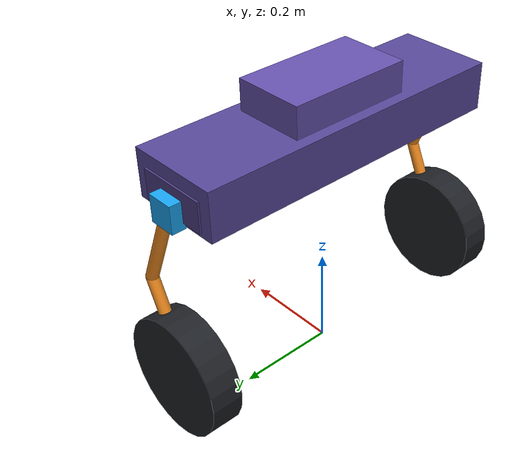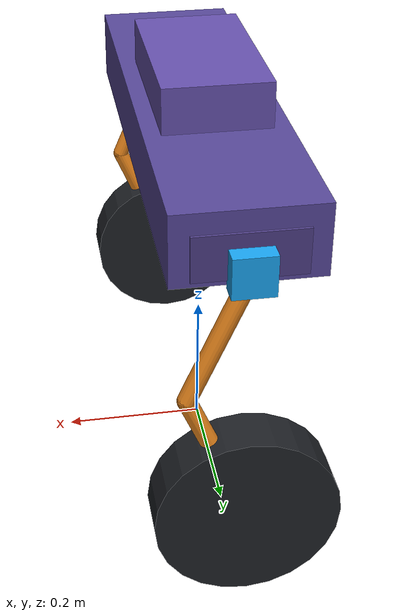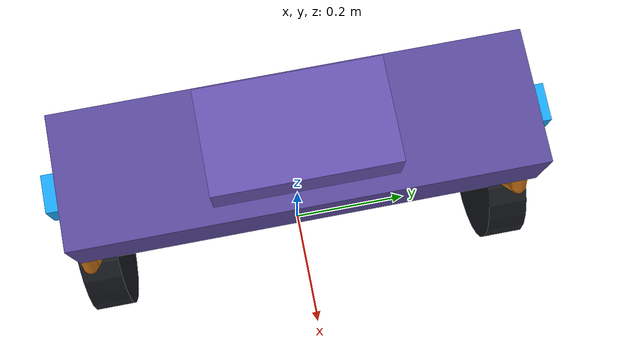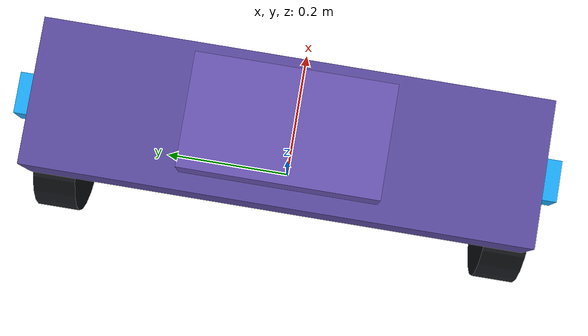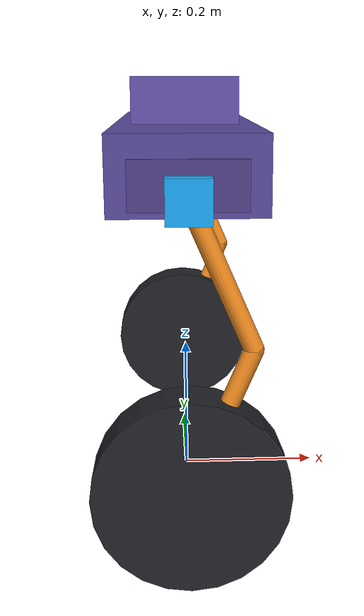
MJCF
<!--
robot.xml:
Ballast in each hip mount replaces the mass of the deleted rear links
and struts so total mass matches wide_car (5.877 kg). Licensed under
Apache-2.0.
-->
<!-- Perlin heightfield scene. Generated by scripts/generate_perlin.py. -->
<mujoco model="prototype_perlin">
  <include file="robot.xml"/>
  <visual>
    <headlight diffuse="0.18 0.18 0.18" ambient="0.10 0.10 0.10"/>
    <rgba haze="0.15 0.25 0.35 1"/>
    <quality shadowsize="2048"/>
    <global offwidth="960" offheight="540" azimuth="140" elevation="-28"/>
  </visual>
  <asset>
    <hfield name="unitree_perlin" file="../terrain/heightfield.png"
            size="24.000 2.000 0.200000 0.20"/>
    <texture type="skybox" builtin="gradient" rgb1="0.30 0.50 0.70"
             rgb2="0.00 0.00 0.00" width="512" height="3072"/>
    <texture name="grid" type="2d" builtin="checker" mark="edge"
             rgb1="0.20 0.30 0.40" rgb2="0.10 0.20 0.30"
             markrgb="0.80 0.80 0.80" width="512" height="512"/>
    <material name="grid" texture="grid" texrepeat="1 1" texuniform="true"
              reflectance="0.05"/>
    <material name="track" rgba="0.76 0.76 0.74 1" reflectance="0"
              specular="0.18" shininess="0.06"/>
  </asset>
  <worldbody>
    <light pos="2.0 1.5 4.0" dir="-0.25 0.15 -0.95" directional="true"
           diffuse="0.95 0.94 0.90" specular="0.18 0.16 0.14"
           castshadow="true"/>
    <geom name="terrain" type="hfield" hfield="unitree_perlin"
          pos="24.000 0 -0.100000" material="track" group="3"
          friction="1.1 0.02 0.002" condim="3"/>
  </worldbody>
</mujoco>

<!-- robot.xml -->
<mujoco model="prototype">
  <compiler angle="radian" autolimits="true"/>
  <option timestep="0.001" integrator="implicitfast" iterations="60"
          ls_iterations="20" noslip_iterations="4"/>

  <default>
    <joint armature="0.005" damping="0.15"/>
    <geom friction="0.8 0.01 0.001" solref="0.004 1"/>
    <default class="link">
      <geom type="capsule" size="0.012" contype="0" conaffinity="0"
            rgba="0.82 0.84 0.88 1"/>
    </default>
    <default class="wheel">
      <geom type="cylinder" size="0.120 0.032" friction="1.1 0.02 0.001"
            rgba="0.12 0.13 0.15 1"/>
    </default>
  </default>

  <worldbody>
    <body name="trunk" pos="0 0 0.408">
      <freejoint name="trunk_freejoint"/>
      <inertial pos="0.00014 0.00000 0.07200" mass="2.90"
                fullinertia="0.055 0.016 0.052 0 0 0"/>
      <geom name="trunk_collision" type="box" pos="0 0 0.086"
            size="0.095 0.328 0.048" rgba="0.34 0.28 0.60 1"/>
      <geom name="trunk_pod" type="box" pos="0 0 0.148"
            size="0.072 0.126 0.048" rgba="0.40 0.32 0.68 1"
            contype="0" conaffinity="0"/>
      <geom name="left_sponson" type="box" pos="0 0.278 0.076"
            size="0.070 0.054 0.030" rgba="0.30 0.24 0.52 1"
            contype="0" conaffinity="0"/>
      <geom name="right_sponson" type="box" pos="0 -0.278 0.076"
            size="0.070 0.054 0.030" rgba="0.30 0.24 0.52 1"
            contype="0" conaffinity="0"/>
      <geom name="axle_beam" type="capsule" fromto="0 0.336 0.050 0 -0.336 0.050"
            size="0.016" rgba="0.22 0.20 0.38 1"
            contype="0" conaffinity="0"/>
      <site name="imu" pos="-0.04095 0.04000 0.155" size="0.006"/>

      <!-- Left hip mount: rigid, no x–z slides. -->
      <body name="left_hip_mount" pos="0 0.3411 0.0602">
        <inertial pos="0 0 -0.16" mass="0.80"
                  diaginertia="0.0012 0.0012 0.0012"/>
        <geom type="box" size="0.027 0.014 0.027" density="0"
              contype="0" conaffinity="0" rgba="0.10 0.65 0.95 1"/>
        <site name="left_hip_origin" size="0.008" rgba="0.10 0.65 0.95 1"/>

        <body name="left_upper">
          <joint name="left_hip" type="hinge" axis="0 1 0" range="-0.65 0.65"/>
          <geom class="link" fromto="0 0 0 0.075 0 -0.174" mass="0.24"
                rgba="0.95 0.55 0.12 1"/>
          <site name="left_knee" pos="0.075 0 -0.174" size="0.009"
                rgba="0.95 0.55 0.12 1"/>

          <body name="left_lower" pos="0.075 0 -0.174">
            <joint name="left_knee" type="hinge" axis="0 1 0" range="-1.20 1.20"/>
            <geom class="link" fromto="0 0 0 -0.075 0 -0.174" mass="0.21"
                  rgba="0.95 0.55 0.12 1"/>
            <body name="left_wheel" pos="-0.075 0 -0.174">
              <joint name="left_wheel_joint" type="hinge" axis="0 1 0"
                     damping="0.005"/>
              <geom class="wheel" quat="0.7071068 0.7071068 0 0" mass="0.2385"/>
            </body>
          </body>
        </body>
      </body>

      <!-- Right hip mount: rigid, no x–z slides. -->
      <body name="right_hip_mount" pos="0 -0.3411 0.0602">
        <inertial pos="0 0 -0.16" mass="0.80"
                  diaginertia="0.0012 0.0012 0.0012"/>
        <geom type="box" size="0.027 0.014 0.027" density="0"
              contype="0" conaffinity="0" rgba="0.10 0.65 0.95 1"/>
        <site name="right_hip_origin" size="0.008" rgba="0.10 0.65 0.95 1"/>

        <body name="right_upper">
          <joint name="right_hip" type="hinge" axis="0 1 0" range="-0.65 0.65"/>
          <geom class="link" fromto="0 0 0 0.075 0 -0.174" mass="0.24"
                rgba="0.95 0.55 0.12 1"/>
          <site name="right_knee" pos="0.075 0 -0.174" size="0.009"
                rgba="0.95 0.55 0.12 1"/>

          <body name="right_lower" pos="0.075 0 -0.174">
            <joint name="right_knee" type="hinge" axis="0 1 0" range="-1.20 1.20"/>
            <geom class="link" fromto="0 0 0 -0.075 0 -0.174" mass="0.21"
                  rgba="0.95 0.55 0.12 1"/>
            <body name="right_wheel" pos="-0.075 0 -0.174">
              <joint name="right_wheel_joint" type="hinge" axis="0 1 0"
                     damping="0.005"/>
              <geom class="wheel" quat="0.7071068 0.7071068 0 0" mass="0.2385"/>
            </body>
          </body>
        </body>
      </body>
    </body>
  </worldbody>

  <actuator>
    <position name="left_hip" joint="left_hip" kp="30" kv="1.5"
              ctrlrange="-0.65 0.65" forcerange="-16 16"/>
    <position name="left_knee" joint="left_knee" kp="30" kv="1.5"
              ctrlrange="-1.20 1.20" forcerange="-16 16"/>
    <motor name="left_wheel" joint="left_wheel_joint"
           ctrlrange="-6 6" forcerange="-6 6"/>
    <position name="right_hip" joint="right_hip" kp="30" kv="1.5"
              ctrlrange="-0.65 0.65" forcerange="-16 16"/>
    <position name="right_knee" joint="right_knee" kp="30" kv="1.5"
              ctrlrange="-1.20 1.20" forcerange="-16 16"/>
    <motor name="right_wheel" joint="right_wheel_joint"
           ctrlrange="-6 6" forcerange="-6 6"/>
  </actuator>

  <sensor>
    <framequat name="imu_quat" objtype="site" objname="imu"/>
    <gyro name="imu_gyro" site="imu"/>
    <velocimeter name="imu_velocity" site="imu"/>
  </sensor>
</mujoco>
